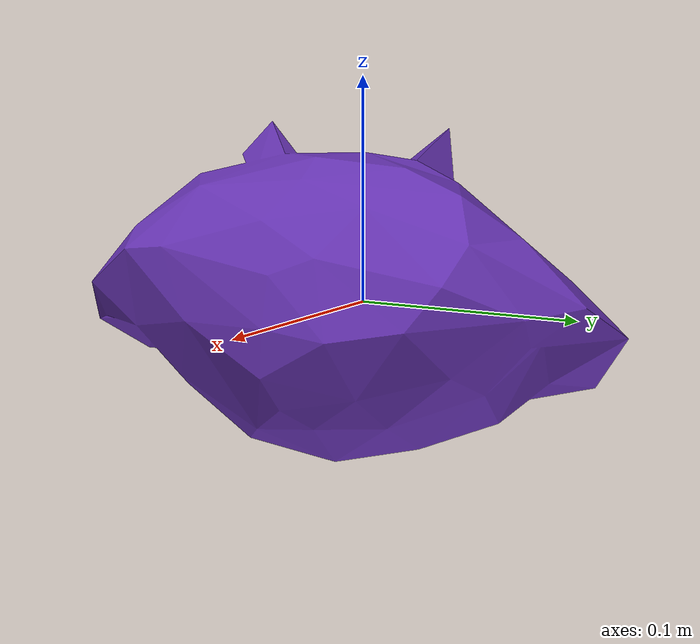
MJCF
<mujoco model="top_watertight_tiny">

  <asset>
    <mesh file="top_watertight_tiny.obj"/>
    <mesh file="top_watertight_tiny_collision_0.obj"/>
    <mesh file="top_watertight_tiny_collision_1.obj"/>
    <mesh file="top_watertight_tiny_collision_2.obj"/>
    <mesh file="top_watertight_tiny_collision_3.obj"/>
    <mesh file="top_watertight_tiny_collision_4.obj"/>
    <mesh file="top_watertight_tiny_collision_5.obj"/>
    <mesh file="top_watertight_tiny_collision_6.obj"/>
    <mesh file="top_watertight_tiny_collision_7.obj"/>
    <mesh file="top_watertight_tiny_collision_8.obj"/>
    <mesh file="top_watertight_tiny_collision_9.obj"/>
    <mesh file="top_watertight_tiny_collision_10.obj"/>
    <mesh file="top_watertight_tiny_collision_11.obj"/>
    <mesh file="top_watertight_tiny_collision_12.obj"/>
    <mesh file="top_watertight_tiny_collision_13.obj"/>
    <mesh file="top_watertight_tiny_collision_14.obj"/>
    <mesh file="top_watertight_tiny_collision_15.obj"/>
    <mesh file="top_watertight_tiny_collision_16.obj"/>
    <mesh file="top_watertight_tiny_collision_17.obj"/>
    <mesh file="top_watertight_tiny_collision_18.obj"/>
    <mesh file="top_watertight_tiny_collision_19.obj"/>
    <mesh file="top_watertight_tiny_collision_20.obj"/>
    <mesh file="top_watertight_tiny_collision_21.obj"/>
    <mesh file="top_watertight_tiny_collision_22.obj"/>
    <mesh file="top_watertight_tiny_collision_23.obj"/>
    <mesh file="top_watertight_tiny_collision_24.obj"/>
    <mesh file="top_watertight_tiny_collision_25.obj"/>
    <mesh file="top_watertight_tiny_collision_26.obj"/>
    <mesh file="top_watertight_tiny_collision_27.obj"/>
    <mesh file="top_watertight_tiny_collision_28.obj"/>
    <mesh file="top_watertight_tiny_collision_29.obj"/>
    <mesh file="top_watertight_tiny_collision_30.obj"/>
    <mesh file="top_watertight_tiny_collision_31.obj"/>
    <mesh file="top_watertight_tiny_collision_32.obj"/>
    <mesh file="top_watertight_tiny_collision_33.obj"/>
    <mesh file="top_watertight_tiny_collision_34.obj"/>
    <mesh file="top_watertight_tiny_collision_35.obj"/>
    <mesh file="top_watertight_tiny_collision_36.obj"/>
    <mesh file="top_watertight_tiny_collision_37.obj"/>
    <mesh file="top_watertight_tiny_collision_38.obj"/>
    <mesh file="top_watertight_tiny_collision_39.obj"/>
    <mesh file="top_watertight_tiny_collision_40.obj"/>
    <mesh file="top_watertight_tiny_collision_41.obj"/>
    <mesh file="top_watertight_tiny_collision_42.obj"/>
    <mesh file="top_watertight_tiny_collision_43.obj"/>
  </asset>
  <worldbody>
    <body name="top_watertight_tiny">
      <freejoint/>
      <geom solimp="0.90 0.95 0.001" solref="0.02 1.0" density="100" friction="0.95 0.4 0.3" rgba="0.4 0.2 0.7 1" mesh="top_watertight_tiny" group="2" type="mesh" contype="0" conaffinity="0"/>
      <geom solimp="0.90 0.95 0.001" solref="0.02 1.0" density="100" friction="0.95 0.4 0.3" mesh="top_watertight_tiny_collision_0" rgba="0.7589719491577853 0.577554682002867 0.6123465300398742 1" group="3" type="mesh"/>
      <geom solimp="0.90 0.95 0.001" solref="0.02 1.0" density="100" friction="0.95 0.4 0.3" mesh="top_watertight_tiny_collision_1" rgba="0.04897966637574469 0.9502099119996748 0.26481221504200836 1" group="3" type="mesh"/>
      <geom solimp="0.90 0.95 0.001" solref="0.02 1.0" density="100" friction="0.95 0.4 0.3" mesh="top_watertight_tiny_collision_2" rgba="0.09066871788060094 0.9060402622201894 0.454485008181325 1" group="3" type="mesh"/>
      <geom solimp="0.90 0.95 0.001" solref="0.02 1.0" density="100" friction="0.95 0.4 0.3" mesh="top_watertight_tiny_collision_3" rgba="0.7131194169220861 0.28266882328778575 0.9146653542193548 1" group="3" type="mesh"/>
      <geom solimp="0.90 0.95 0.001" solref="0.02 1.0" density="100" friction="0.95 0.4 0.3" mesh="top_watertight_tiny_collision_4" rgba="0.612939603836786 0.37057015722326714 0.7718377263145242 1" group="3" type="mesh"/>
      <geom solimp="0.90 0.95 0.001" solref="0.02 1.0" density="100" friction="0.95 0.4 0.3" mesh="top_watertight_tiny_collision_5" rgba="0.5636155761830843 0.6169175616513125 0.7561215972766027 1" group="3" type="mesh"/>
      <geom solimp="0.90 0.95 0.001" solref="0.02 1.0" density="100" friction="0.95 0.4 0.3" mesh="top_watertight_tiny_collision_6" rgba="0.545183677694767 0.5330665335546593 0.46200940958342673 1" group="3" type="mesh"/>
      <geom solimp="0.90 0.95 0.001" solref="0.02 1.0" density="100" friction="0.95 0.4 0.3" mesh="top_watertight_tiny_collision_7" rgba="0.11691702019925554 0.9597274171977709 0.6902971039305281 1" group="3" type="mesh"/>
      <geom solimp="0.90 0.95 0.001" solref="0.02 1.0" density="100" friction="0.95 0.4 0.3" mesh="top_watertight_tiny_collision_8" rgba="0.09008110747753939 0.13677277011916467 0.8815448725358838 1" group="3" type="mesh"/>
      <geom solimp="0.90 0.95 0.001" solref="0.02 1.0" density="100" friction="0.95 0.4 0.3" mesh="top_watertight_tiny_collision_9" rgba="0.6601877819917125 0.4458882811203132 0.06405779126265831 1" group="3" type="mesh"/>
      <geom solimp="0.90 0.95 0.001" solref="0.02 1.0" density="100" friction="0.95 0.4 0.3" mesh="top_watertight_tiny_collision_10" rgba="0.15718568808412925 0.5413638404593639 0.4497381135697587 1" group="3" type="mesh"/>
      <geom solimp="0.90 0.95 0.001" solref="0.02 1.0" density="100" friction="0.95 0.4 0.3" mesh="top_watertight_tiny_collision_11" rgba="0.8029329120779499 0.8760023720403851 0.04237657685164864 1" group="3" type="mesh"/>
      <geom solimp="0.90 0.95 0.001" solref="0.02 1.0" density="100" friction="0.95 0.4 0.3" mesh="top_watertight_tiny_collision_12" rgba="0.7342862240665207 0.837202519267025 0.6566976589059015 1" group="3" type="mesh"/>
      <geom solimp="0.90 0.95 0.001" solref="0.02 1.0" density="100" friction="0.95 0.4 0.3" mesh="top_watertight_tiny_collision_13" rgba="0.437520133540067 0.5193467414186309 0.685044116699402 1" group="3" type="mesh"/>
      <geom solimp="0.90 0.95 0.001" solref="0.02 1.0" density="100" friction="0.95 0.4 0.3" mesh="top_watertight_tiny_collision_14" rgba="0.5751908957775119 0.3177903042343102 0.8799620352805322 1" group="3" type="mesh"/>
      <geom solimp="0.90 0.95 0.001" solref="0.02 1.0" density="100" friction="0.95 0.4 0.3" mesh="top_watertight_tiny_collision_15" rgba="0.3638884962433929 0.7322820174626389 0.24169264208972308 1" group="3" type="mesh"/>
      <geom solimp="0.90 0.95 0.001" solref="0.02 1.0" density="100" friction="0.95 0.4 0.3" mesh="top_watertight_tiny_collision_16" rgba="0.7839524541139884 0.4619882369152071 0.583998572146114 1" group="3" type="mesh"/>
      <geom solimp="0.90 0.95 0.001" solref="0.02 1.0" density="100" friction="0.95 0.4 0.3" mesh="top_watertight_tiny_collision_17" rgba="0.6984813327602061 0.3994075909939492 0.038662982439526705 1" group="3" type="mesh"/>
      <geom solimp="0.90 0.95 0.001" solref="0.02 1.0" density="100" friction="0.95 0.4 0.3" mesh="top_watertight_tiny_collision_18" rgba="0.6215783812418709 0.6149391588702111 0.20251936568316797 1" group="3" type="mesh"/>
      <geom solimp="0.90 0.95 0.001" solref="0.02 1.0" density="100" friction="0.95 0.4 0.3" mesh="top_watertight_tiny_collision_19" rgba="0.5808319082154818 0.024494555949623575 0.31732702556905357 1" group="3" type="mesh"/>
      <geom solimp="0.90 0.95 0.001" solref="0.02 1.0" density="100" friction="0.95 0.4 0.3" mesh="top_watertight_tiny_collision_20" rgba="0.6608124968069778 0.8345470352973817 0.19059853974602814 1" group="3" type="mesh"/>
      <geom solimp="0.90 0.95 0.001" solref="0.02 1.0" density="100" friction="0.95 0.4 0.3" mesh="top_watertight_tiny_collision_21" rgba="0.06884165758231076 0.2787225031260748 0.6103098613723782 1" group="3" type="mesh"/>
      <geom solimp="0.90 0.95 0.001" solref="0.02 1.0" density="100" friction="0.95 0.4 0.3" mesh="top_watertight_tiny_collision_22" rgba="0.004506686219950984 0.09105202220315767 0.45875658010702225 1" group="3" type="mesh"/>
      <geom solimp="0.90 0.95 0.001" solref="0.02 1.0" density="100" friction="0.95 0.4 0.3" mesh="top_watertight_tiny_collision_23" rgba="0.4310190303532001 0.23790627799129194 0.23016116920214302 1" group="3" type="mesh"/>
      <geom solimp="0.90 0.95 0.001" solref="0.02 1.0" density="100" friction="0.95 0.4 0.3" mesh="top_watertight_tiny_collision_24" rgba="0.02821415257509874 0.5413352165023336 0.8697259234797459 1" group="3" type="mesh"/>
      <geom solimp="0.90 0.95 0.001" solref="0.02 1.0" density="100" friction="0.95 0.4 0.3" mesh="top_watertight_tiny_collision_25" rgba="0.9535839190065684 0.10650208231684422 0.7494705271394752 1" group="3" type="mesh"/>
      <geom solimp="0.90 0.95 0.001" solref="0.02 1.0" density="100" friction="0.95 0.4 0.3" mesh="top_watertight_tiny_collision_26" rgba="0.4464963063047229 0.12007972520250365 0.015850342635314485 1" group="3" type="mesh"/>
      <geom solimp="0.90 0.95 0.001" solref="0.02 1.0" density="100" friction="0.95 0.4 0.3" mesh="top_watertight_tiny_collision_27" rgba="0.6789120931789836 0.38606337256585443 0.38425896039460916 1" group="3" type="mesh"/>
      <geom solimp="0.90 0.95 0.001" solref="0.02 1.0" density="100" friction="0.95 0.4 0.3" mesh="top_watertight_tiny_collision_28" rgba="0.7807135395545429 0.9800769505719978 0.9830771770687313 1" group="3" type="mesh"/>
      <geom solimp="0.90 0.95 0.001" solref="0.02 1.0" density="100" friction="0.95 0.4 0.3" mesh="top_watertight_tiny_collision_29" rgba="0.8816273372798075 0.752359514860462 0.143373240636247 1" group="3" type="mesh"/>
      <geom solimp="0.90 0.95 0.001" solref="0.02 1.0" density="100" friction="0.95 0.4 0.3" mesh="top_watertight_tiny_collision_30" rgba="0.12887926561163443 0.8141986711191456 0.9697494536915362 1" group="3" type="mesh"/>
      <geom solimp="0.90 0.95 0.001" solref="0.02 1.0" density="100" friction="0.95 0.4 0.3" mesh="top_watertight_tiny_collision_31" rgba="0.3794816271893652 0.6339402452323318 0.48189874682117695 1" group="3" type="mesh"/>
      <geom solimp="0.90 0.95 0.001" solref="0.02 1.0" density="100" friction="0.95 0.4 0.3" mesh="top_watertight_tiny_collision_32" rgba="0.7597229771062882 0.9494983608207309 0.044977525707837196 1" group="3" type="mesh"/>
      <geom solimp="0.90 0.95 0.001" solref="0.02 1.0" density="100" friction="0.95 0.4 0.3" mesh="top_watertight_tiny_collision_33" rgba="0.03877728109327505 0.6273899926697 0.8738209754566951 1" group="3" type="mesh"/>
      <geom solimp="0.90 0.95 0.001" solref="0.02 1.0" density="100" friction="0.95 0.4 0.3" mesh="top_watertight_tiny_collision_34" rgba="0.5436724572660134 0.5962031559138679 0.9273775006087206 1" group="3" type="mesh"/>
      <geom solimp="0.90 0.95 0.001" solref="0.02 1.0" density="100" friction="0.95 0.4 0.3" mesh="top_watertight_tiny_collision_35" rgba="0.8152896015488326 0.9895397154881852 0.21528111375364545 1" group="3" type="mesh"/>
      <geom solimp="0.90 0.95 0.001" solref="0.02 1.0" density="100" friction="0.95 0.4 0.3" mesh="top_watertight_tiny_collision_36" rgba="0.5980212225341262 0.7226181897890867 0.48081955660473663 1" group="3" type="mesh"/>
      <geom solimp="0.90 0.95 0.001" solref="0.02 1.0" density="100" friction="0.95 0.4 0.3" mesh="top_watertight_tiny_collision_37" rgba="0.05174183939346977 0.1273749648740342 0.535833531034031 1" group="3" type="mesh"/>
      <geom solimp="0.90 0.95 0.001" solref="0.02 1.0" density="100" friction="0.95 0.4 0.3" mesh="top_watertight_tiny_collision_38" rgba="0.16397070315553197 0.13496423778602762 0.35785311784523677 1" group="3" type="mesh"/>
      <geom solimp="0.90 0.95 0.001" solref="0.02 1.0" density="100" friction="0.95 0.4 0.3" mesh="top_watertight_tiny_collision_39" rgba="0.12431546350677292 0.2943639951752659 0.6068608755726519 1" group="3" type="mesh"/>
      <geom solimp="0.90 0.95 0.001" solref="0.02 1.0" density="100" friction="0.95 0.4 0.3" mesh="top_watertight_tiny_collision_40" rgba="0.30743611302131457 0.6357926120794172 0.7222222658287795 1" group="3" type="mesh"/>
      <geom solimp="0.90 0.95 0.001" solref="0.02 1.0" density="100" friction="0.95 0.4 0.3" mesh="top_watertight_tiny_collision_41" rgba="0.22113811729241473 0.7539283577197828 0.3844244673777365 1" group="3" type="mesh"/>
      <geom solimp="0.90 0.95 0.001" solref="0.02 1.0" density="100" friction="0.95 0.4 0.3" mesh="top_watertight_tiny_collision_42" rgba="0.8285069146123161 0.8959113008485705 0.548414376037403 1" group="3" type="mesh"/>
      <geom solimp="0.90 0.95 0.001" solref="0.02 1.0" density="100" friction="0.95 0.4 0.3" mesh="top_watertight_tiny_collision_43" rgba="0.040140290805188106 0.1329168719877748 0.1395396837080023 1" group="3" type="mesh"/>
    </body>
  </worldbody>
</mujoco>
